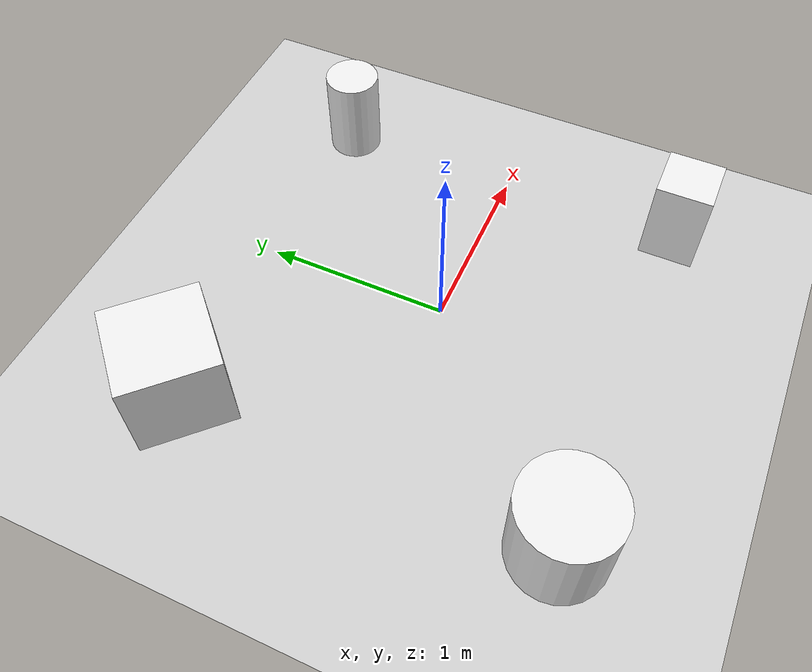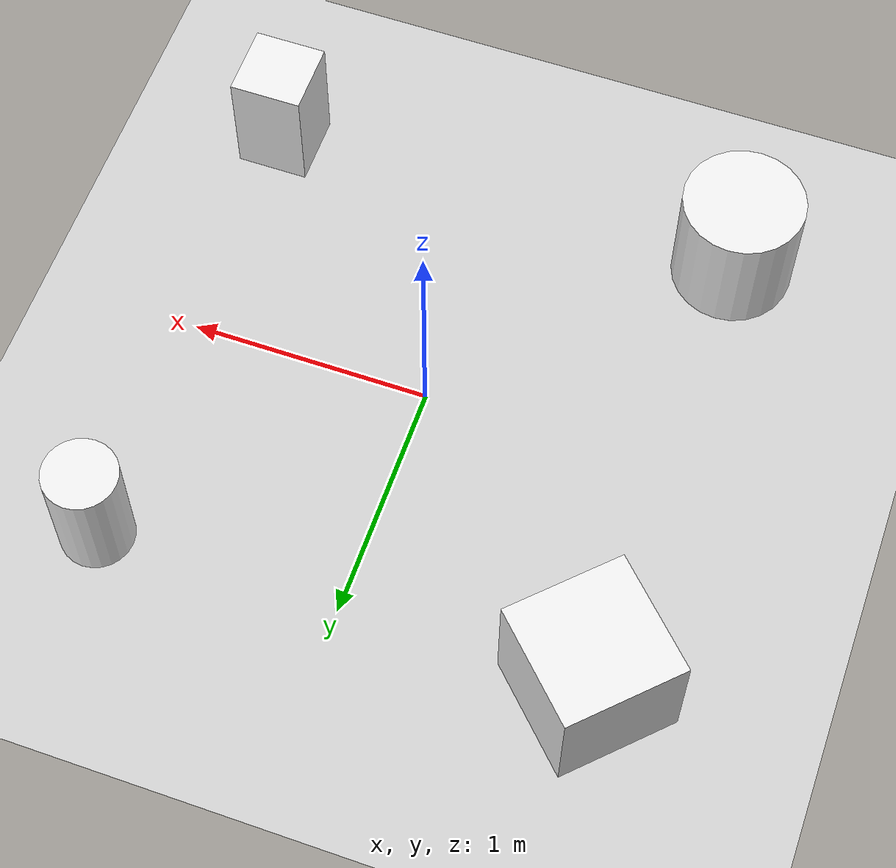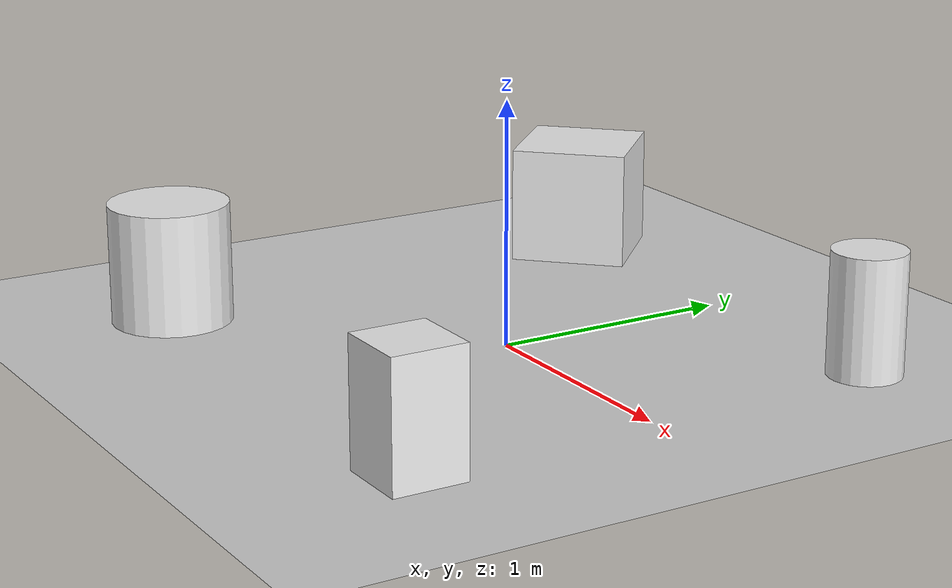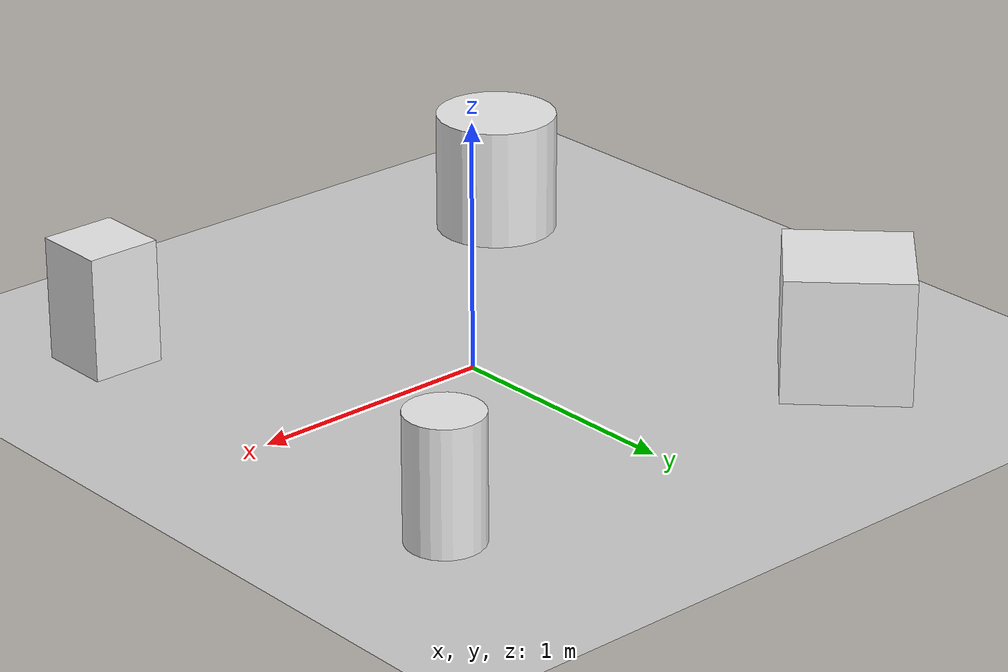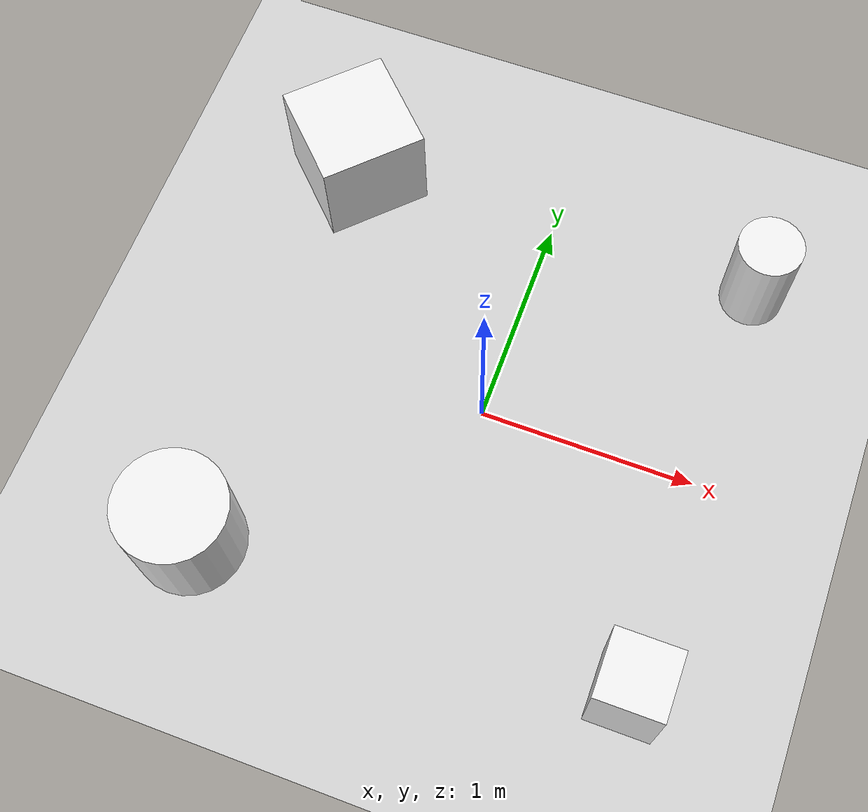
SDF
<sdf version="1.6">
 <world name="default">
  <include><uri>model://ground_plane</uri></include>
  <include><uri>model://sun</uri></include>
  <scene><shadows>false</shadows></scene>
  <physics type="ode">
   <real_time_update_rate>1000.0</real_time_update_rate>
   <max_step_size>0.001</max_step_size>
   <real_time_factor>1</real_time_factor>
   <ode>
    <solver>
     <type>quick</type>
     <iters>150</iters>
     <precon_iters>0</precon_iters>
     <sor>1.400000</sor>
     <use_dynamic_moi_rescaling>1</use_dynamic_moi_rescaling>
    </solver>
    <constraints>
     <cfm>0.00001</cfm>
     <erp>0.2</erp>
     <contact_max_correcting_vel>2000.000000</contact_max_correcting_vel>
     <contact_surface_layer>0.01000</contact_surface_layer>
    </constraints>
   </ode>
  </physics>
  <model name="box1">
   <static>true</static>
   <pose>-1 1 0.25 0 0 0.785398</pose>
   <link name="link">
    <visual name="visual">
     <geometry><box><size>0.5 0.5 0.5</size></box></geometry>
     <material>
      <script><uri>file://media/materials/scripts/gazebo.material</uri><name>Gazebo/White</name></script>
     </material>
    </visual>
    <collision name="collision"><geometry><box><size>0.5 0.5 0.5</size></box></geometry></collision>
   </link>
  </model>
  <model name="box2">
   <static>true</static>
   <pose>1 -1 0.25 0 0 0</pose>
   <link name="link">
    <visual name="visual">
     <geometry><box><size>0.3 0.3 0.5</size></box></geometry>
     <material>
      <script><uri>file://media/materials/scripts/gazebo.material</uri><name>Gazebo/White</name></script>
     </material>
    </visual>
    <collision name="collision"><geometry><box><size>0.3 0.3 0.5</size></box></geometry></collision>
   </link>
  </model>
  <model name="cylinder1">
   <static>true</static>
   <pose>1 1 0.25 0 0 0</pose>
   <link name="link">
    <visual name="visual">
     <geometry><cylinder><radius>0.15</radius><length>0.5</length></cylinder></geometry>
     <material>
      <script><uri>file://media/materials/scripts/gazebo.material</uri><name>Gazebo/White</name></script>
     </material>
    </visual>
    <collision name="collision">
     <geometry><cylinder><radius>0.15</radius><length>0.5</length></cylinder></geometry>
    </collision>
   </link>
  </model>
  <model name="cylinder2">
   <static>true</static>
   <pose>-1 -1 0.25 0 0 0</pose>
   <link name="link">
    <visual name="visual">
     <geometry><cylinder><radius>0.25</radius><length>0.5</length></cylinder></geometry>
     <material>
      <script><uri>file://media/materials/scripts/gazebo.material</uri><name>Gazebo/White</name></script>
     </material>
    </visual>
    <collision name="collision">
     <geometry><cylinder><radius>0.25</radius><length>0.5</length></cylinder></geometry>
    </collision>
   </link>
  </model>
 </world>
</sdf>
